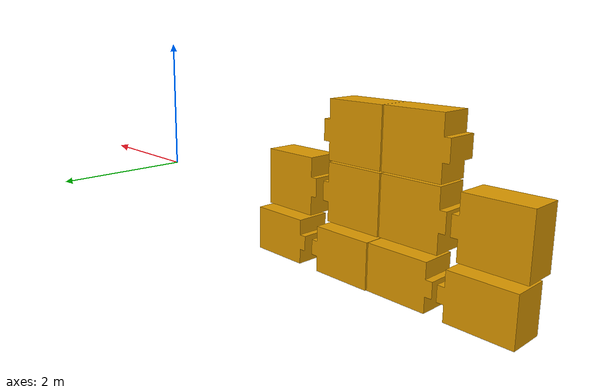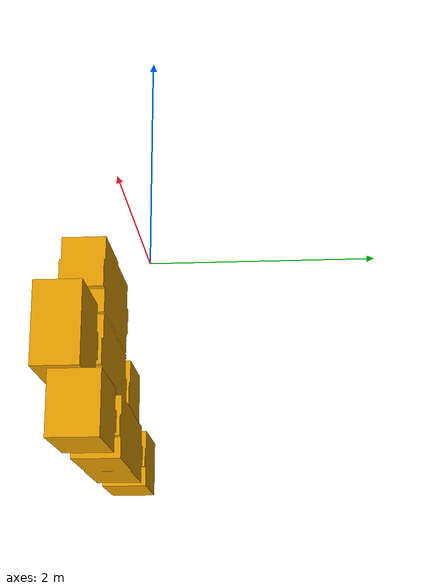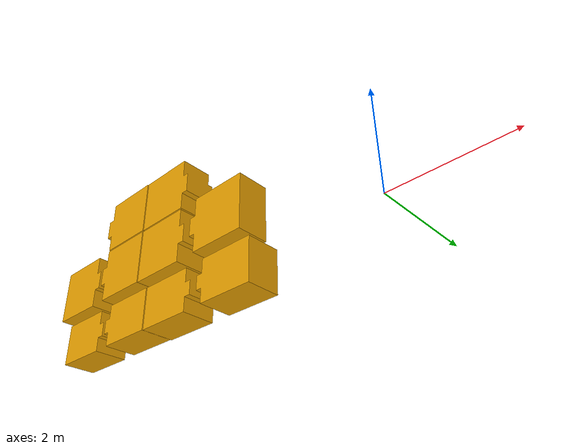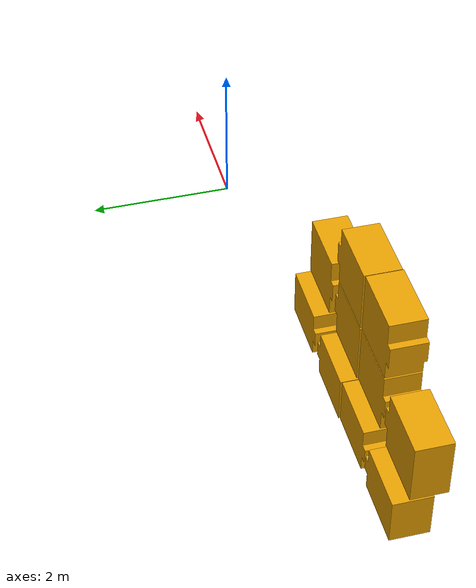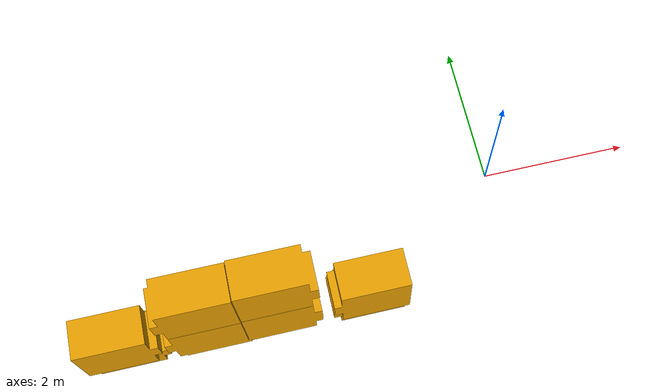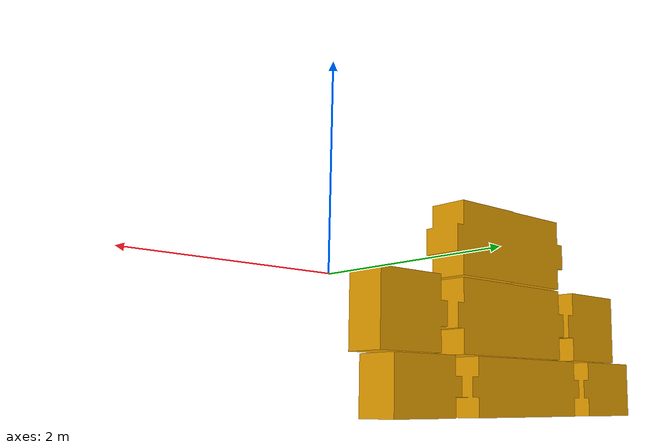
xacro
<?xml version="1.0"?>
<robot name="link_23_s4_truss_batteries" xmlns:xacro="http://www.ros.org/wiki/xacro">

  <!-- Batteries that are not going to be manipulated -->
  <link name="link_23_s4_truss_batteries">

   <inertial>
     <origin xyz="0 0 0.0" rpy="0 0 0"/>
     <mass value="1"/>
     <inertia ixx="100"  ixy="0"  ixz="0" iyy="100" iyz="0" izz="100" />
   </inertial>

   <!-- Battery Mid Right -->
   <visual>
     <origin xyz="-2.1381 -1.1503 -0.11272" rpy="0 0 0" />
     <geometry>
       <mesh filename="package://iss_description/meshes/s4_truss_23_battery_mid_right.dae" scale="1 1 1"/>
     </geometry>
   </visual>

   <collision>
     <origin xyz="-2.1381 -1.1503 -0.11272" rpy="0 0 0"/>
     <geometry>
       <mesh filename="package://iss_description/meshes/s4_truss_23_battery_mid_right.dae" scale="1 1 1"/>
     </geometry>
   </collision>

   <!-- Battery Bottom Right  -->
   <visual>
     <origin xyz="-2.1381 -0.94274 -0.95647" rpy="0 0 0" />
     <geometry>
       <mesh filename="package://iss_description/meshes/s4_truss_23_battery_bottom_right.dae" scale="1 1 1"/>
     </geometry>
   </visual>

   <collision>
     <origin xyz="-2.1381 -0.94274 -0.95647" rpy="0 0 0"/>
     <geometry>
       <mesh filename="package://iss_description/meshes/s4_truss_23_battery_bottom_right.dae" scale="1 1 1"/>
     </geometry>
   </collision>

   <!-- Battery Middle  -->
   <visual>
     <origin xyz="-3.6924 -1.0769 -0.081281" rpy="0 0 0" />
     <geometry>
       <mesh filename="package://iss_description/meshes/s4_truss_23_battery_middle.dae" scale="1 1 1"/>
     </geometry>
   </visual>

   <collision>
     <origin xyz="-3.6924 -1.0769 -0.081281" rpy="0 0 0"/>
     <geometry>
       <mesh filename="package://iss_description/meshes/s4_truss_23_battery_middle.dae" scale="1 1 1"/>
     </geometry>
   </collision>

   <!-- Battery Mid Left -->
   <visual>
     <origin xyz="-5.1678 -1.1385 -0.11288" rpy="0 0 0" />
     <geometry>
       <mesh filename="package://iss_description/meshes/s4_truss_23_battery_mid_left.dae" scale="1 1 1"/>
     </geometry>
   </visual>

   <collision>
     <origin xyz="-5.1678 -1.1385 -0.11288" rpy="0 0 0"/>
     <geometry>
       <mesh filename="package://iss_description/meshes/s4_truss_23_battery_mid_left.dae" scale="1 1 1"/>
     </geometry>
   </collision>

   <!-- Battery Bottom Left  -->
   <visual>
     <origin xyz="-5.1678 -0.93013 -0.95659" rpy="0 0 0" />
     <geometry>
       <mesh filename="package://iss_description/meshes/s4_truss_23_battery_bottom_left.dae" scale="1 1 1"/>
     </geometry>
   </visual>

   <collision>
     <origin xyz="-5.1678 -0.93013 -0.95659" rpy="0 0 0"/>
     <geometry>
       <mesh filename="package://iss_description/meshes/s4_truss_23_battery_bottom_left.dae" scale="1 1 1"/>
     </geometry>
   </collision>

  </link>

</robot>
